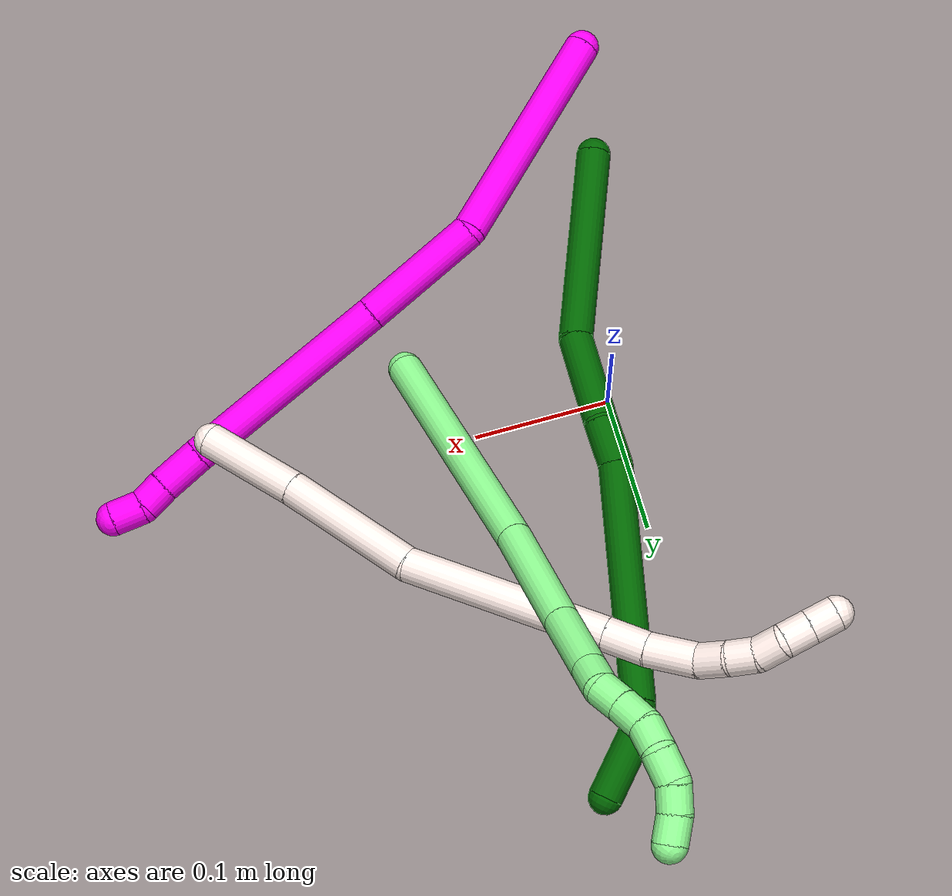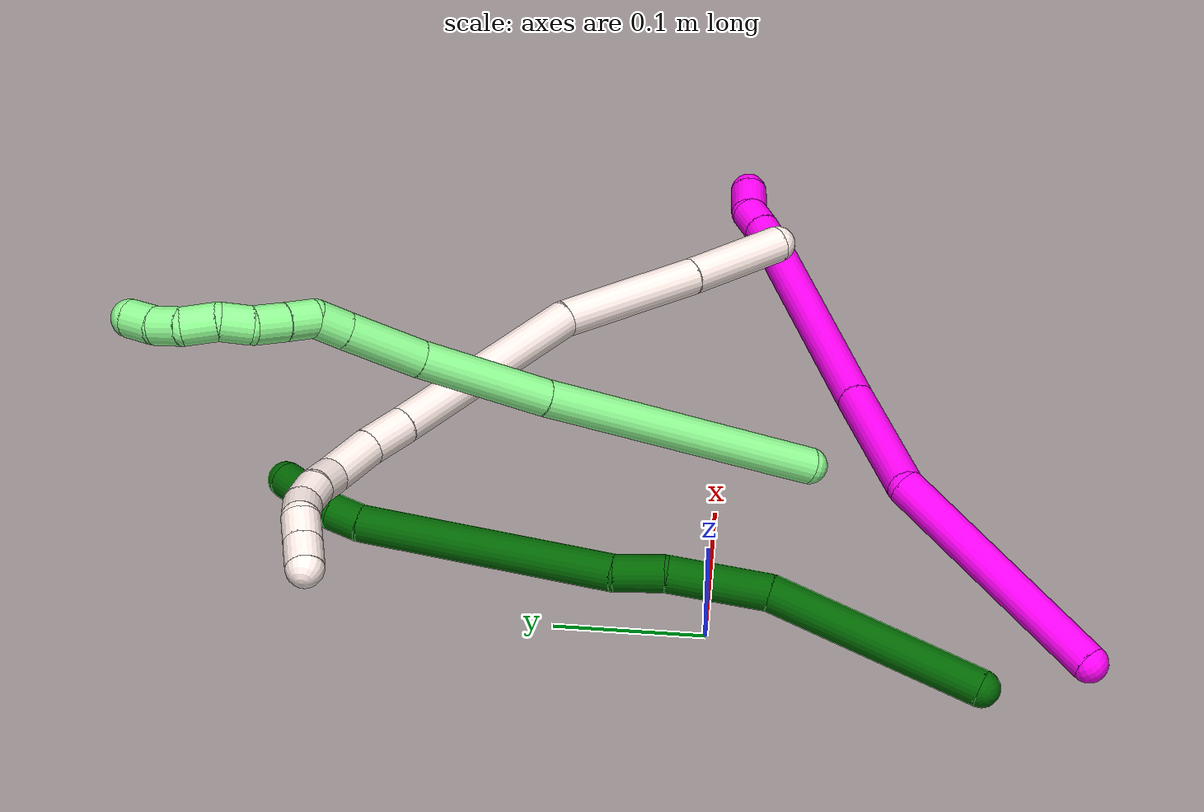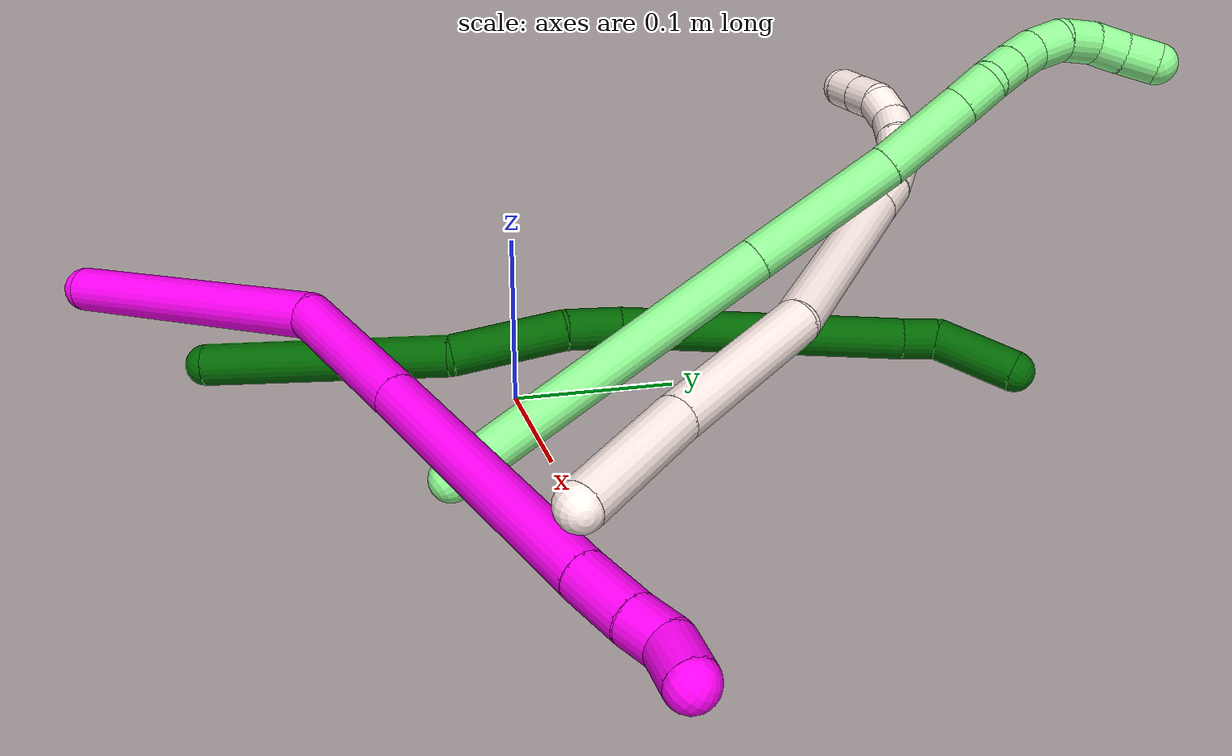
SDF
<sdf version="1.7">
 <world name="default">
  <model name="6">
   <static>0</static>
   <link name="6">
    <collision name="collision-cylinder-e_1_1_4">
     <pose>0.000671 0.045891 0.059735 -0.655079 0.008907 -0.003026</pose>
     <geometry><cylinder><radius>0.0125</radius><length>0.150661</length></cylinder></geometry>
     <surface>
      <friction><ode><mu>1.16</mu><mu2>1.16</mu2><slip1>0</slip1><slip2>0</slip2></ode></friction>
      <contact><ode><kp>1e+06</kp><kd>1</kd><max_vel>0</max_vel><min_depth>0.001</min_depth></ode></contact>
     </surface>
    </collision>
    <visual name="visual-cylinder-e_1_1_4">
     <pose>0.000671 0.045891 0.059735 -0.655079 0.008907 -0.003026</pose>
     <geometry><cylinder><radius>0.0125</radius><length>0.150661</length></cylinder></geometry>
     <material><ambient>0 0.392157 0.003922 1</ambient></material>
    </visual>
    <collision name="collision-cylinder-e_2_4_5">
     <pose>0.009682 0.118679 0.139851 -0.922335 0.242283 -0.120836</pose>
     <geometry><cylinder><radius>0.0125</radius><length>0.069526</length></cylinder></geometry>
     <surface>
      <friction><ode><mu>1.16</mu><mu2>1.16</mu2><slip1>0</slip1><slip2>0</slip2></ode></friction>
      <contact><ode><kp>1e+06</kp><kd>1</kd><max_vel>0</max_vel><min_depth>0.001</min_depth></ode></contact>
     </surface>
    </collision>
    <visual name="visual-cylinder-e_2_4_5">
     <pose>0.009682 0.118679 0.139851 -0.922335 0.242283 -0.120836</pose>
     <geometry><cylinder><radius>0.0125</radius><length>0.069526</length></cylinder></geometry>
     <material><ambient>0 0.392157 0.003922 1</ambient></material>
    </visual>
    <collision name="collision-cylinder-e_3_5_6">
     <pose>0.024904 0.156657 0.17122 -0.789671 0.415365 -0.175173</pose>
     <geometry><cylinder><radius>0.0125</radius><length>0.034107</length></cylinder></geometry>
     <surface>
      <friction><ode><mu>1.16</mu><mu2>1.16</mu2><slip1>0</slip1><slip2>0</slip2></ode></friction>
      <contact><ode><kp>1e+06</kp><kd>1</kd><max_vel>0</max_vel><min_depth>0.001</min_depth></ode></contact>
     </surface>
    </collision>
    <visual name="visual-cylinder-e_3_5_6">
     <pose>0.024904 0.156657 0.17122 -0.789671 0.415365 -0.175173</pose>
     <geometry><cylinder><radius>0.0125</radius><length>0.034107</length></cylinder></geometry>
     <material><ambient>0 0.392157 0.003922 1</ambient></material>
    </visual>
    <collision name="collision-cylinder-e_4_6_7">
     <pose>0.052333 0.218274 0.250101 -0.639869 0.238157 -0.079239</pose>
     <geometry><cylinder><radius>0.0125</radius><length>0.174194</length></cylinder></geometry>
     <surface>
      <friction><ode><mu>1.16</mu><mu2>1.16</mu2><slip1>0</slip1><slip2>0</slip2></ode></friction>
      <contact><ode><kp>1e+06</kp><kd>1</kd><max_vel>0</max_vel><min_depth>0.001</min_depth></ode></contact>
     </surface>
    </collision>
    <visual name="visual-cylinder-e_4_6_7">
     <pose>0.052333 0.218274 0.250101 -0.639869 0.238157 -0.079239</pose>
     <geometry><cylinder><radius>0.0125</radius><length>0.174194</length></cylinder></geometry>
     <material><ambient>0 0.392157 0.003922 1</ambient></material>
    </visual>
    <collision name="collision-cylinder-e_5_7_8">
     <pose>0.073377 0.275118 0.326747 -0.624431 0.046038 -0.014862</pose>
     <geometry><cylinder><radius>0.0125</radius><length>0.021597</length></cylinder></geometry>
     <surface>
      <friction><ode><mu>1.16</mu><mu2>1.16</mu2><slip1>0</slip1><slip2>0</slip2></ode></friction>
      <contact><ode><kp>1e+06</kp><kd>1</kd><max_vel>0</max_vel><min_depth>0.001</min_depth></ode></contact>
     </surface>
    </collision>
    <visual name="visual-cylinder-e_5_7_8">
     <pose>0.073377 0.275118 0.326747 -0.624431 0.046038 -0.014862</pose>
     <geometry><cylinder><radius>0.0125</radius><length>0.021597</length></cylinder></geometry>
     <material><ambient>0 0.392157 0.003922 1</ambient></material>
    </visual>
    <collision name="collision-cylinder-e_6_8_2">
     <pose>0.071673 0.285547 0.360015 -0.166611 -0.088284 0.007376</pose>
     <geometry><cylinder><radius>0.0125</radius><length>0.049915</length></cylinder></geometry>
     <surface>
      <friction><ode><mu>1.16</mu><mu2>1.16</mu2><slip1>0</slip1><slip2>0</slip2></ode></friction>
      <contact><ode><kp>1e+06</kp><kd>1</kd><max_vel>0</max_vel><min_depth>0.001</min_depth></ode></contact>
     </surface>
    </collision>
    <visual name="visual-cylinder-e_6_8_2">
     <pose>0.071673 0.285547 0.360015 -0.166611 -0.088284 0.007376</pose>
     <geometry><cylinder><radius>0.0125</radius><length>0.049915</length></cylinder></geometry>
     <material><ambient>0 0.392157 0.003922 1</ambient></material>
    </visual>
    <collision name="collision-sphere-2">
     <pose>0.069473 0.28967 0.384531 0 -0 0</pose>
     <geometry><sphere><radius>0.0125</radius></sphere></geometry>
     <surface>
      <friction><ode><mu>1.16</mu><mu2>1.16</mu2><slip1>0</slip1><slip2>0</slip2></ode></friction>
      <contact><ode><kp>1e+06</kp><kd>1</kd><max_vel>0</max_vel><min_depth>0.001</min_depth></ode></contact>
     </surface>
    </collision>
    <visual name="visual-sphere-2">
     <pose>0.069473 0.28967 0.384531 0 -0 0</pose>
     <geometry><sphere><radius>0.0125</radius></sphere></geometry>
     <material><ambient>0 0.392157 0.003922 1</ambient></material>
    </visual>
    <collision name="collision-sphere-4">
     <pose>0.001342 0.091782 0.119469 0 -0 0</pose>
     <geometry><sphere><radius>0.0125</radius></sphere></geometry>
     <surface>
      <friction><ode><mu>1.16</mu><mu2>1.16</mu2><slip1>0</slip1><slip2>0</slip2></ode></friction>
      <contact><ode><kp>1e+06</kp><kd>1</kd><max_vel>0</max_vel><min_depth>0.001</min_depth></ode></contact>
     </surface>
    </collision>
    <visual name="visual-sphere-4">
     <pose>0.001342 0.091782 0.119469 0 -0 0</pose>
     <geometry><sphere><radius>0.0125</radius></sphere></geometry>
     <material><ambient>0 0.392157 0.003922 1</ambient></material>
    </visual>
    <collision name="collision-sphere-1">
     <geometry><sphere><radius>0.0125</radius></sphere></geometry>
     <surface>
      <friction><ode><mu>1.16</mu><mu2>1.16</mu2><slip1>0</slip1><slip2>0</slip2></ode></friction>
      <contact><ode><kp>1e+06</kp><kd>1</kd><max_vel>0</max_vel><min_depth>0.001</min_depth></ode></contact>
     </surface>
    </collision>
    <visual name="visual-sphere-1">
     <geometry><sphere><radius>0.0125</radius></sphere></geometry>
     <material><ambient>0 0.392157 0.003922 1</ambient></material>
    </visual>
    <collision name="collision-sphere-8">
     <pose>0.073874 0.281425 0.335499 0 -0 0</pose>
     <geometry><sphere><radius>0.0125</radius></sphere></geometry>
     <surface>
      <friction><ode><mu>1.16</mu><mu2>1.16</mu2><slip1>0</slip1><slip2>0</slip2></ode></friction>
      <contact><ode><kp>1e+06</kp><kd>1</kd><max_vel>0</max_vel><min_depth>0.001</min_depth></ode></contact>
     </surface>
    </collision>
    <visual name="visual-sphere-8">
     <pose>0.073874 0.281425 0.335499 0 -0 0</pose>
     <geometry><sphere><radius>0.0125</radius></sphere></geometry>
     <material><ambient>0 0.392157 0.003922 1</ambient></material>
    </visual>
    <collision name="collision-sphere-5">
     <pose>0.018022 0.145577 0.160234 0 -0 0</pose>
     <geometry><sphere><radius>0.0125</radius></sphere></geometry>
     <surface>
      <friction><ode><mu>1.16</mu><mu2>1.16</mu2><slip1>0</slip1><slip2>0</slip2></ode></friction>
      <contact><ode><kp>1e+06</kp><kd>1</kd><max_vel>0</max_vel><min_depth>0.001</min_depth></ode></contact>
     </surface>
    </collision>
    <visual name="visual-sphere-5">
     <pose>0.018022 0.145577 0.160234 0 -0 0</pose>
     <geometry><sphere><radius>0.0125</radius></sphere></geometry>
     <material><ambient>0 0.392157 0.003922 1</ambient></material>
    </visual>
    <collision name="collision-sphere-6">
     <pose>0.031785 0.167737 0.182206 0 -0 0</pose>
     <geometry><sphere><radius>0.0125</radius></sphere></geometry>
     <surface>
      <friction><ode><mu>1.16</mu><mu2>1.16</mu2><slip1>0</slip1><slip2>0</slip2></ode></friction>
      <contact><ode><kp>1e+06</kp><kd>1</kd><max_vel>0</max_vel><min_depth>0.001</min_depth></ode></contact>
     </surface>
    </collision>
    <visual name="visual-sphere-6">
     <pose>0.031785 0.167737 0.182206 0 -0 0</pose>
     <geometry><sphere><radius>0.0125</radius></sphere></geometry>
     <material><ambient>0 0.392157 0.003922 1</ambient></material>
    </visual>
    <collision name="collision-sphere-7">
     <pose>0.07288 0.268812 0.317996 0 -0 0</pose>
     <geometry><sphere><radius>0.0125</radius></sphere></geometry>
     <surface>
      <friction><ode><mu>1.16</mu><mu2>1.16</mu2><slip1>0</slip1><slip2>0</slip2></ode></friction>
      <contact><ode><kp>1e+06</kp><kd>1</kd><max_vel>0</max_vel><min_depth>0.001</min_depth></ode></contact>
     </surface>
    </collision>
    <visual name="visual-sphere-7">
     <pose>0.07288 0.268812 0.317996 0 -0 0</pose>
     <geometry><sphere><radius>0.0125</radius></sphere></geometry>
     <material><ambient>0 0.392157 0.003922 1</ambient></material>
    </visual>
    <inertial>
     <pose>0.031804 0.157451 0.186312 0 -0 0</pose>
     <mass>0.5</mass>
     <inertia>
      <ixx>0.000738</ixx>
      <ixy>0</ixy>
      <ixz>0</ixz>
      <iyy>0.000612</iyy>
      <iyz>0</iyz>
      <izz>-0.000553</izz>
     </inertia>
    </inertial>
   </link>
   <pose>-0.042493 -0.180269 0.024869 2.12671 0.596946 2.69921</pose>
  </model>
  <model name="10">
   <static>0</static>
   <link name="10">
    <collision name="collision-cylinder-e_1_1_4">
     <pose>0.05125 0.039714 0.055665 -0.619696 0.643176 -0.212521</pose>
     <geometry><cylinder><radius>0.0125</radius><length>0.170907</length></cylinder></geometry>
     <surface>
      <friction><ode><mu>1.16</mu><mu2>1.16</mu2><slip1>0</slip1><slip2>0</slip2></ode></friction>
      <contact><ode><kp>1e+06</kp><kd>1</kd><max_vel>0</max_vel><min_depth>0.001</min_depth></ode></contact>
     </surface>
    </collision>
    <visual name="visual-cylinder-e_1_1_4">
     <pose>0.05125 0.039714 0.055665 -0.619696 0.643176 -0.212521</pose>
     <geometry><cylinder><radius>0.0125</radius><length>0.170907</length></cylinder></geometry>
     <material><ambient>1 0 0.964706 1</ambient></material>
    </visual>
    <collision name="collision-cylinder-e_2_4_5">
     <pose>0.143506 0.093955 0.12586 -0.785274 1.10629 -0.500685</pose>
     <geometry><cylinder><radius>0.0125</radius><length>0.091732</length></cylinder></geometry>
     <surface>
      <friction><ode><mu>1.16</mu><mu2>1.16</mu2><slip1>0</slip1><slip2>0</slip2></ode></friction>
      <contact><ode><kp>1e+06</kp><kd>1</kd><max_vel>0</max_vel><min_depth>0.001</min_depth></ode></contact>
     </surface>
    </collision>
    <visual name="visual-cylinder-e_2_4_5">
     <pose>0.143506 0.093955 0.12586 -0.785274 1.10629 -0.500685</pose>
     <geometry><cylinder><radius>0.0125</radius><length>0.091732</length></cylinder></geometry>
     <material><ambient>1 0 0.964706 1</ambient></material>
    </visual>
    <collision name="collision-cylinder-e_3_5_6">
     <pose>0.256404 0.132536 0.165486 -0.764213 1.12041 -0.493834</pose>
     <geometry><cylinder><radius>0.0125</radius><length>0.159709</length></cylinder></geometry>
     <surface>
      <friction><ode><mu>1.16</mu><mu2>1.16</mu2><slip1>0</slip1><slip2>0</slip2></ode></friction>
      <contact><ode><kp>1e+06</kp><kd>1</kd><max_vel>0</max_vel><min_depth>0.001</min_depth></ode></contact>
     </surface>
    </collision>
    <visual name="visual-cylinder-e_3_5_6">
     <pose>0.256404 0.132536 0.165486 -0.764213 1.12041 -0.493834</pose>
     <geometry><cylinder><radius>0.0125</radius><length>0.159709</length></cylinder></geometry>
     <material><ambient>1 0 0.964706 1</ambient></material>
    </visual>
    <collision name="collision-cylinder-e_4_6_7">
     <pose>0.343133 0.162097 0.196377 -0.759886 1.07662 -0.468183</pose>
     <geometry><cylinder><radius>0.0125</radius><length>0.033709</length></cylinder></geometry>
     <surface>
      <friction><ode><mu>1.16</mu><mu2>1.16</mu2><slip1>0</slip1><slip2>0</slip2></ode></friction>
      <contact><ode><kp>1e+06</kp><kd>1</kd><max_vel>0</max_vel><min_depth>0.001</min_depth></ode></contact>
     </surface>
    </collision>
    <visual name="visual-cylinder-e_4_6_7">
     <pose>0.343133 0.162097 0.196377 -0.759886 1.07662 -0.468183</pose>
     <geometry><cylinder><radius>0.0125</radius><length>0.033709</length></cylinder></geometry>
     <material><ambient>1 0 0.964706 1</ambient></material>
    </visual>
    <collision name="collision-cylinder-e_5_7_8">
     <pose>0.366459 0.17157 0.206216 -0.775692 0.982299 -0.430264</pose>
     <geometry><cylinder><radius>0.0125</radius><length>0.020408</length></cylinder></geometry>
     <surface>
      <friction><ode><mu>1.16</mu><mu2>1.16</mu2><slip1>0</slip1><slip2>0</slip2></ode></friction>
      <contact><ode><kp>1e+06</kp><kd>1</kd><max_vel>0</max_vel><min_depth>0.001</min_depth></ode></contact>
     </surface>
    </collision>
    <visual name="visual-cylinder-e_5_7_8">
     <pose>0.366459 0.17157 0.206216 -0.775692 0.982299 -0.430264</pose>
     <geometry><cylinder><radius>0.0125</radius><length>0.020408</length></cylinder></geometry>
     <material><ambient>1 0 0.964706 1</ambient></material>
    </visual>
    <collision name="collision-cylinder-e_6_8_2">
     <pose>0.38646 0.175899 0.212663 -0.149773 1.36276 -0.121535</pose>
     <geometry><cylinder><radius>0.0125</radius><length>0.023534</length></cylinder></geometry>
     <surface>
      <friction><ode><mu>1.16</mu><mu2>1.16</mu2><slip1>0</slip1><slip2>0</slip2></ode></friction>
      <contact><ode><kp>1e+06</kp><kd>1</kd><max_vel>0</max_vel><min_depth>0.001</min_depth></ode></contact>
     </surface>
    </collision>
    <visual name="visual-cylinder-e_6_8_2">
     <pose>0.38646 0.175899 0.212663 -0.149773 1.36276 -0.121535</pose>
     <geometry><cylinder><radius>0.0125</radius><length>0.023534</length></cylinder></geometry>
     <material><ambient>1 0 0.964706 1</ambient></material>
    </visual>
    <collision name="collision-sphere-2">
     <pose>0.397973 0.176262 0.215066 0 -0 0</pose>
     <geometry><sphere><radius>0.0125</radius></sphere></geometry>
     <surface>
      <friction><ode><mu>1.16</mu><mu2>1.16</mu2><slip1>0</slip1><slip2>0</slip2></ode></friction>
      <contact><ode><kp>1e+06</kp><kd>1</kd><max_vel>0</max_vel><min_depth>0.001</min_depth></ode></contact>
     </surface>
    </collision>
    <visual name="visual-sphere-2">
     <pose>0.397973 0.176262 0.215066 0 -0 0</pose>
     <geometry><sphere><radius>0.0125</radius></sphere></geometry>
     <material><ambient>1 0 0.964706 1</ambient></material>
    </visual>
    <collision name="collision-sphere-4">
     <pose>0.1025 0.079428 0.111329 0 -0 0</pose>
     <geometry><sphere><radius>0.0125</radius></sphere></geometry>
     <surface>
      <friction><ode><mu>1.16</mu><mu2>1.16</mu2><slip1>0</slip1><slip2>0</slip2></ode></friction>
      <contact><ode><kp>1e+06</kp><kd>1</kd><max_vel>0</max_vel><min_depth>0.001</min_depth></ode></contact>
     </surface>
    </collision>
    <visual name="visual-sphere-4">
     <pose>0.1025 0.079428 0.111329 0 -0 0</pose>
     <geometry><sphere><radius>0.0125</radius></sphere></geometry>
     <material><ambient>1 0 0.964706 1</ambient></material>
    </visual>
    <collision name="collision-sphere-1">
     <geometry><sphere><radius>0.0125</radius></sphere></geometry>
     <surface>
      <friction><ode><mu>1.16</mu><mu2>1.16</mu2><slip1>0</slip1><slip2>0</slip2></ode></friction>
      <contact><ode><kp>1e+06</kp><kd>1</kd><max_vel>0</max_vel><min_depth>0.001</min_depth></ode></contact>
     </surface>
    </collision>
    <visual name="visual-sphere-1">
     <geometry><sphere><radius>0.0125</radius></sphere></geometry>
     <material><ambient>1 0 0.964706 1</ambient></material>
    </visual>
    <collision name="collision-sphere-8">
     <pose>0.374947 0.175536 0.21026 0 -0 0</pose>
     <geometry><sphere><radius>0.0125</radius></sphere></geometry>
     <surface>
      <friction><ode><mu>1.16</mu><mu2>1.16</mu2><slip1>0</slip1><slip2>0</slip2></ode></friction>
      <contact><ode><kp>1e+06</kp><kd>1</kd><max_vel>0</max_vel><min_depth>0.001</min_depth></ode></contact>
     </surface>
    </collision>
    <visual name="visual-sphere-8">
     <pose>0.374947 0.175536 0.21026 0 -0 0</pose>
     <geometry><sphere><radius>0.0125</radius></sphere></geometry>
     <material><ambient>1 0 0.964706 1</ambient></material>
    </visual>
    <collision name="collision-sphere-5">
     <pose>0.184512 0.108483 0.140391 0 -0 0</pose>
     <geometry><sphere><radius>0.0125</radius></sphere></geometry>
     <surface>
      <friction><ode><mu>1.16</mu><mu2>1.16</mu2><slip1>0</slip1><slip2>0</slip2></ode></friction>
      <contact><ode><kp>1e+06</kp><kd>1</kd><max_vel>0</max_vel><min_depth>0.001</min_depth></ode></contact>
     </surface>
    </collision>
    <visual name="visual-sphere-5">
     <pose>0.184512 0.108483 0.140391 0 -0 0</pose>
     <geometry><sphere><radius>0.0125</radius></sphere></geometry>
     <material><ambient>1 0 0.964706 1</ambient></material>
    </visual>
    <collision name="collision-sphere-6">
     <pose>0.328295 0.15659 0.190582 0 -0 0</pose>
     <geometry><sphere><radius>0.0125</radius></sphere></geometry>
     <surface>
      <friction><ode><mu>1.16</mu><mu2>1.16</mu2><slip1>0</slip1><slip2>0</slip2></ode></friction>
      <contact><ode><kp>1e+06</kp><kd>1</kd><max_vel>0</max_vel><min_depth>0.001</min_depth></ode></contact>
     </surface>
    </collision>
    <visual name="visual-sphere-6">
     <pose>0.328295 0.15659 0.190582 0 -0 0</pose>
     <geometry><sphere><radius>0.0125</radius></sphere></geometry>
     <material><ambient>1 0 0.964706 1</ambient></material>
    </visual>
    <collision name="collision-sphere-7">
     <pose>0.357972 0.167604 0.202172 0 -0 0</pose>
     <geometry><sphere><radius>0.0125</radius></sphere></geometry>
     <surface>
      <friction><ode><mu>1.16</mu><mu2>1.16</mu2><slip1>0</slip1><slip2>0</slip2></ode></friction>
      <contact><ode><kp>1e+06</kp><kd>1</kd><max_vel>0</max_vel><min_depth>0.001</min_depth></ode></contact>
     </surface>
    </collision>
    <visual name="visual-sphere-7">
     <pose>0.357972 0.167604 0.202172 0 -0 0</pose>
     <geometry><sphere><radius>0.0125</radius></sphere></geometry>
     <material><ambient>1 0 0.964706 1</ambient></material>
    </visual>
    <inertial>
     <pose>0.182027 0.099357 0.126643 0 -0 0</pose>
     <mass>0.5</mass>
     <inertia>
      <ixx>0.000365</ixx>
      <ixy>0</ixy>
      <ixz>0</ixz>
      <iyy>0.000615</iyy>
      <iyz>0</iyz>
      <izz>-0.00094</izz>
     </inertia>
    </inertial>
   </link>
   <pose>-0.051219 -0.24427 0.07525 -0.612059 0.320611 -0.072679</pose>
  </model>
  <model name="11">
   <static>0</static>
   <link name="11">
    <collision name="collision-cylinder-e_1_1_4">
     <pose>-0.013217 0.024578 0.024512 -0.786737 -0.363827 0.15238</pose>
     <geometry><cylinder><radius>0.0125</radius><length>0.074286</length></cylinder></geometry>
     <surface>
      <friction><ode><mu>1.16</mu><mu2>1.16</mu2><slip1>0</slip1><slip2>0</slip2></ode></friction>
      <contact><ode><kp>1e+06</kp><kd>1</kd><max_vel>0</max_vel><min_depth>0.001</min_depth></ode></contact>
     </surface>
    </collision>
    <visual name="visual-cylinder-e_1_1_4">
     <pose>-0.013217 0.024578 0.024512 -0.786737 -0.363827 0.15238</pose>
     <geometry><cylinder><radius>0.0125</radius><length>0.074286</length></cylinder></geometry>
     <material><ambient>1 0.933333 0.909804 1</ambient></material>
    </visual>
    <collision name="collision-cylinder-e_2_4_5">
     <pose>-0.046284 0.084508 0.081369 -0.829807 -0.392729 0.174799</pose>
     <geometry><cylinder><radius>0.0125</radius><length>0.103732</length></cylinder></geometry>
     <surface>
      <friction><ode><mu>1.16</mu><mu2>1.16</mu2><slip1>0</slip1><slip2>0</slip2></ode></friction>
      <contact><ode><kp>1e+06</kp><kd>1</kd><max_vel>0</max_vel><min_depth>0.001</min_depth></ode></contact>
     </surface>
    </collision>
    <visual name="visual-cylinder-e_2_4_5">
     <pose>-0.046284 0.084508 0.081369 -0.829807 -0.392729 0.174799</pose>
     <geometry><cylinder><radius>0.0125</radius><length>0.103732</length></cylinder></geometry>
     <material><ambient>1 0.933333 0.909804 1</ambient></material>
    </visual>
    <collision name="collision-cylinder-e_3_5_6">
     <pose>-0.088541 0.159072 0.173883 -0.577548 -0.302431 0.090475</pose>
     <geometry><cylinder><radius>0.0125</radius><length>0.150464</length></cylinder></geometry>
     <surface>
      <friction><ode><mu>1.16</mu><mu2>1.16</mu2><slip1>0</slip1><slip2>0</slip2></ode></friction>
      <contact><ode><kp>1e+06</kp><kd>1</kd><max_vel>0</max_vel><min_depth>0.001</min_depth></ode></contact>
     </surface>
    </collision>
    <visual name="visual-cylinder-e_3_5_6">
     <pose>-0.088541 0.159072 0.173883 -0.577548 -0.302431 0.090475</pose>
     <geometry><cylinder><radius>0.0125</radius><length>0.150464</length></cylinder></geometry>
     <material><ambient>1 0.933333 0.909804 1</ambient></material>
    </visual>
    <collision name="collision-cylinder-e_4_6_7">
     <pose>-0.115632 0.206579 0.246125 -0.602021 -0.309456 0.096767</pose>
     <geometry><cylinder><radius>0.0125</radius><length>0.030758</length></cylinder></geometry>
     <surface>
      <friction><ode><mu>1.16</mu><mu2>1.16</mu2><slip1>0</slip1><slip2>0</slip2></ode></friction>
      <contact><ode><kp>1e+06</kp><kd>1</kd><max_vel>0</max_vel><min_depth>0.001</min_depth></ode></contact>
     </surface>
    </collision>
    <visual name="visual-cylinder-e_4_6_7">
     <pose>-0.115632 0.206579 0.246125 -0.602021 -0.309456 0.096767</pose>
     <geometry><cylinder><radius>0.0125</radius><length>0.030758</length></cylinder></geometry>
     <material><ambient>1 0.933333 0.909804 1</ambient></material>
    </visual>
    <collision name="collision-cylinder-e_5_7_8">
     <pose>-0.123989 0.223732 0.273969 -0.511758 -0.20035 0.052578</pose>
     <geometry><cylinder><radius>0.0125</radius><length>0.036913</length></cylinder></geometry>
     <surface>
      <friction><ode><mu>1.16</mu><mu2>1.16</mu2><slip1>0</slip1><slip2>0</slip2></ode></friction>
      <contact><ode><kp>1e+06</kp><kd>1</kd><max_vel>0</max_vel><min_depth>0.001</min_depth></ode></contact>
     </surface>
    </collision>
    <visual name="visual-cylinder-e_5_7_8">
     <pose>-0.123989 0.223732 0.273969 -0.511758 -0.20035 0.052578</pose>
     <geometry><cylinder><radius>0.0125</radius><length>0.036913</length></cylinder></geometry>
     <material><ambient>1 0.933333 0.909804 1</ambient></material>
    </visual>
    <collision name="collision-cylinder-e_6_8_9">
     <pose>-0.125649 0.238605 0.299367 -0.558476 0.175503 -0.050441</pose>
     <geometry><cylinder><radius>0.0125</radius><length>0.023062</length></cylinder></geometry>
     <surface>
      <friction><ode><mu>1.16</mu><mu2>1.16</mu2><slip1>0</slip1><slip2>0</slip2></ode></friction>
      <contact><ode><kp>1e+06</kp><kd>1</kd><max_vel>0</max_vel><min_depth>0.001</min_depth></ode></contact>
     </surface>
    </collision>
    <visual name="visual-cylinder-e_6_8_9">
     <pose>-0.125649 0.238605 0.299367 -0.558476 0.175503 -0.050441</pose>
     <geometry><cylinder><radius>0.0125</radius><length>0.023062</length></cylinder></geometry>
     <material><ambient>1 0.933333 0.909804 1</ambient></material>
    </visual>
    <collision name="collision-cylinder-e_7_9_10">
     <pose>-0.122468 0.248321 0.318607 -0.367445 0.112851 -0.020991</pose>
     <geometry><cylinder><radius>0.0125</radius><length>0.020729</length></cylinder></geometry>
     <surface>
      <friction><ode><mu>1.16</mu><mu2>1.16</mu2><slip1>0</slip1><slip2>0</slip2></ode></friction>
      <contact><ode><kp>1e+06</kp><kd>1</kd><max_vel>0</max_vel><min_depth>0.001</min_depth></ode></contact>
     </surface>
    </collision>
    <visual name="visual-cylinder-e_7_9_10">
     <pose>-0.122468 0.248321 0.318607 -0.367445 0.112851 -0.020991</pose>
     <geometry><cylinder><radius>0.0125</radius><length>0.020729</length></cylinder></geometry>
     <material><ambient>1 0.933333 0.909804 1</ambient></material>
    </visual>
    <collision name="collision-cylinder-e_8_10_11">
     <pose>-0.117297 0.253838 0.337224 -0.199116 0.410987 -0.041635</pose>
     <geometry><cylinder><radius>0.0125</radius><length>0.020043</length></cylinder></geometry>
     <surface>
      <friction><ode><mu>1.16</mu><mu2>1.16</mu2><slip1>0</slip1><slip2>0</slip2></ode></friction>
      <contact><ode><kp>1e+06</kp><kd>1</kd><max_vel>0</max_vel><min_depth>0.001</min_depth></ode></contact>
     </surface>
    </collision>
    <visual name="visual-cylinder-e_8_10_11">
     <pose>-0.117297 0.253838 0.337224 -0.199116 0.410987 -0.041635</pose>
     <geometry><cylinder><radius>0.0125</radius><length>0.020043</length></cylinder></geometry>
     <material><ambient>1 0.933333 0.909804 1</ambient></material>
    </visual>
    <collision name="collision-cylinder-e_9_11_12">
     <pose>-0.111493 0.254071 0.355943 0.161662 0.180888 0.014693</pose>
     <geometry><cylinder><radius>0.0125</radius><length>0.020011</length></cylinder></geometry>
     <surface>
      <friction><ode><mu>1.16</mu><mu2>1.16</mu2><slip1>0</slip1><slip2>0</slip2></ode></friction>
      <contact><ode><kp>1e+06</kp><kd>1</kd><max_vel>0</max_vel><min_depth>0.001</min_depth></ode></contact>
     </surface>
    </collision>
    <visual name="visual-cylinder-e_9_11_12">
     <pose>-0.111493 0.254071 0.355943 0.161662 0.180888 0.014693</pose>
     <geometry><cylinder><radius>0.0125</radius><length>0.020011</length></cylinder></geometry>
     <material><ambient>1 0.933333 0.909804 1</ambient></material>
    </visual>
    <collision name="collision-cylinder-e_10_12_2">
     <pose>-0.107891 0.250904 0.375366 0.161649 0.181196 0.014717</pose>
     <geometry><cylinder><radius>0.0125</radius><length>0.020002</length></cylinder></geometry>
     <surface>
      <friction><ode><mu>1.16</mu><mu2>1.16</mu2><slip1>0</slip1><slip2>0</slip2></ode></friction>
      <contact><ode><kp>1e+06</kp><kd>1</kd><max_vel>0</max_vel><min_depth>0.001</min_depth></ode></contact>
     </surface>
    </collision>
    <visual name="visual-cylinder-e_10_12_2">
     <pose>-0.107891 0.250904 0.375366 0.161649 0.181196 0.014717</pose>
     <geometry><cylinder><radius>0.0125</radius><length>0.020002</length></cylinder></geometry>
     <material><ambient>1 0.933333 0.909804 1</ambient></material>
    </visual>
    <collision name="collision-sphere-2">
     <pose>-0.106089 0.24932 0.385076 0 -0 0</pose>
     <geometry><sphere><radius>0.0125</radius></sphere></geometry>
     <surface>
      <friction><ode><mu>1.16</mu><mu2>1.16</mu2><slip1>0</slip1><slip2>0</slip2></ode></friction>
      <contact><ode><kp>1e+06</kp><kd>1</kd><max_vel>0</max_vel><min_depth>0.001</min_depth></ode></contact>
     </surface>
    </collision>
    <visual name="visual-sphere-2">
     <pose>-0.106089 0.24932 0.385076 0 -0 0</pose>
     <geometry><sphere><radius>0.0125</radius></sphere></geometry>
     <material><ambient>1 0.933333 0.909804 1</ambient></material>
    </visual>
    <collision name="collision-sphere-12">
     <pose>-0.109693 0.252487 0.365657 0 -0 0</pose>
     <geometry><sphere><radius>0.0125</radius></sphere></geometry>
     <surface>
      <friction><ode><mu>1.16</mu><mu2>1.16</mu2><slip1>0</slip1><slip2>0</slip2></ode></friction>
      <contact><ode><kp>1e+06</kp><kd>1</kd><max_vel>0</max_vel><min_depth>0.001</min_depth></ode></contact>
     </surface>
    </collision>
    <visual name="visual-sphere-12">
     <pose>-0.109693 0.252487 0.365657 0 -0 0</pose>
     <geometry><sphere><radius>0.0125</radius></sphere></geometry>
     <material><ambient>1 0.933333 0.909804 1</ambient></material>
    </visual>
    <collision name="collision-sphere-11">
     <pose>-0.113293 0.255655 0.346229 0 -0 0</pose>
     <geometry><sphere><radius>0.0125</radius></sphere></geometry>
     <surface>
      <friction><ode><mu>1.16</mu><mu2>1.16</mu2><slip1>0</slip1><slip2>0</slip2></ode></friction>
      <contact><ode><kp>1e+06</kp><kd>1</kd><max_vel>0</max_vel><min_depth>0.001</min_depth></ode></contact>
     </surface>
    </collision>
    <visual name="visual-sphere-11">
     <pose>-0.113293 0.255655 0.346229 0 -0 0</pose>
     <geometry><sphere><radius>0.0125</radius></sphere></geometry>
     <material><ambient>1 0.933333 0.909804 1</ambient></material>
    </visual>
    <collision name="collision-sphere-10">
     <pose>-0.121301 0.252021 0.328219 0 -0 0</pose>
     <geometry><sphere><radius>0.0125</radius></sphere></geometry>
     <surface>
      <friction><ode><mu>1.16</mu><mu2>1.16</mu2><slip1>0</slip1><slip2>0</slip2></ode></friction>
      <contact><ode><kp>1e+06</kp><kd>1</kd><max_vel>0</max_vel><min_depth>0.001</min_depth></ode></contact>
     </surface>
    </collision>
    <visual name="visual-sphere-10">
     <pose>-0.121301 0.252021 0.328219 0 -0 0</pose>
     <geometry><sphere><radius>0.0125</radius></sphere></geometry>
     <material><ambient>1 0.933333 0.909804 1</ambient></material>
    </visual>
    <collision name="collision-sphere-9">
     <pose>-0.123635 0.244622 0.308996 0 -0 0</pose>
     <geometry><sphere><radius>0.0125</radius></sphere></geometry>
     <surface>
      <friction><ode><mu>1.16</mu><mu2>1.16</mu2><slip1>0</slip1><slip2>0</slip2></ode></friction>
      <contact><ode><kp>1e+06</kp><kd>1</kd><max_vel>0</max_vel><min_depth>0.001</min_depth></ode></contact>
     </surface>
    </collision>
    <visual name="visual-sphere-9">
     <pose>-0.123635 0.244622 0.308996 0 -0 0</pose>
     <geometry><sphere><radius>0.0125</radius></sphere></geometry>
     <material><ambient>1 0.933333 0.909804 1</ambient></material>
    </visual>
    <collision name="collision-sphere-4">
     <pose>-0.026435 0.049155 0.049024 0 -0 0</pose>
     <geometry><sphere><radius>0.0125</radius></sphere></geometry>
     <surface>
      <friction><ode><mu>1.16</mu><mu2>1.16</mu2><slip1>0</slip1><slip2>0</slip2></ode></friction>
      <contact><ode><kp>1e+06</kp><kd>1</kd><max_vel>0</max_vel><min_depth>0.001</min_depth></ode></contact>
     </surface>
    </collision>
    <visual name="visual-sphere-4">
     <pose>-0.026435 0.049155 0.049024 0 -0 0</pose>
     <geometry><sphere><radius>0.0125</radius></sphere></geometry>
     <material><ambient>1 0.933333 0.909804 1</ambient></material>
    </visual>
    <collision name="collision-sphere-1">
     <geometry><sphere><radius>0.0125</radius></sphere></geometry>
     <surface>
      <friction><ode><mu>1.16</mu><mu2>1.16</mu2><slip1>0</slip1><slip2>0</slip2></ode></friction>
      <contact><ode><kp>1e+06</kp><kd>1</kd><max_vel>0</max_vel><min_depth>0.001</min_depth></ode></contact>
     </surface>
    </collision>
    <visual name="visual-sphere-1">
     <geometry><sphere><radius>0.0125</radius></sphere></geometry>
     <material><ambient>1 0.933333 0.909804 1</ambient></material>
    </visual>
    <collision name="collision-sphere-8">
     <pose>-0.127662 0.232589 0.289739 0 -0 0</pose>
     <geometry><sphere><radius>0.0125</radius></sphere></geometry>
     <surface>
      <friction><ode><mu>1.16</mu><mu2>1.16</mu2><slip1>0</slip1><slip2>0</slip2></ode></friction>
      <contact><ode><kp>1e+06</kp><kd>1</kd><max_vel>0</max_vel><min_depth>0.001</min_depth></ode></contact>
     </surface>
    </collision>
    <visual name="visual-sphere-8">
     <pose>-0.127662 0.232589 0.289739 0 -0 0</pose>
     <geometry><sphere><radius>0.0125</radius></sphere></geometry>
     <material><ambient>1 0.933333 0.909804 1</ambient></material>
    </visual>
    <collision name="collision-sphere-5">
     <pose>-0.066134 0.119862 0.113714 0 -0 0</pose>
     <geometry><sphere><radius>0.0125</radius></sphere></geometry>
     <surface>
      <friction><ode><mu>1.16</mu><mu2>1.16</mu2><slip1>0</slip1><slip2>0</slip2></ode></friction>
      <contact><ode><kp>1e+06</kp><kd>1</kd><max_vel>0</max_vel><min_depth>0.001</min_depth></ode></contact>
     </surface>
    </collision>
    <visual name="visual-sphere-5">
     <pose>-0.066134 0.119862 0.113714 0 -0 0</pose>
     <geometry><sphere><radius>0.0125</radius></sphere></geometry>
     <material><ambient>1 0.933333 0.909804 1</ambient></material>
    </visual>
    <collision name="collision-sphere-6">
     <pose>-0.110949 0.198283 0.234052 0 -0 0</pose>
     <geometry><sphere><radius>0.0125</radius></sphere></geometry>
     <surface>
      <friction><ode><mu>1.16</mu><mu2>1.16</mu2><slip1>0</slip1><slip2>0</slip2></ode></friction>
      <contact><ode><kp>1e+06</kp><kd>1</kd><max_vel>0</max_vel><min_depth>0.001</min_depth></ode></contact>
     </surface>
    </collision>
    <visual name="visual-sphere-6">
     <pose>-0.110949 0.198283 0.234052 0 -0 0</pose>
     <geometry><sphere><radius>0.0125</radius></sphere></geometry>
     <material><ambient>1 0.933333 0.909804 1</ambient></material>
    </visual>
    <collision name="collision-sphere-7">
     <pose>-0.120316 0.214874 0.258199 0 -0 0</pose>
     <geometry><sphere><radius>0.0125</radius></sphere></geometry>
     <surface>
      <friction><ode><mu>1.16</mu><mu2>1.16</mu2><slip1>0</slip1><slip2>0</slip2></ode></friction>
      <contact><ode><kp>1e+06</kp><kd>1</kd><max_vel>0</max_vel><min_depth>0.001</min_depth></ode></contact>
     </surface>
    </collision>
    <visual name="visual-sphere-7">
     <pose>-0.120316 0.214874 0.258199 0 -0 0</pose>
     <geometry><sphere><radius>0.0125</radius></sphere></geometry>
     <material><ambient>1 0.933333 0.909804 1</ambient></material>
    </visual>
    <inertial>
     <pose>-0.078831 0.14996 0.178013 0 -0 0</pose>
     <mass>0.5</mass>
     <inertia><ixx>0.000453</ixx><ixy>0</ixy><ixz>0</ixz><iyy>0.000424</iyy><iyz>0</iyz><izz>-8e-05</izz></inertia>
    </inertial>
   </link>
   <pose>0.287096 -0.029661 0.061713 1.48914 -0.84632 -1.55231</pose>
  </model>
  <model name="13">
   <static>0</static>
   <link name="13">
    <collision name="collision-cylinder-e_1_1_4">
     <pose>5.5e-05 0.001503 0.101211 -0.014852 0.000548 -4e-06</pose>
     <geometry><cylinder><radius>0.0125</radius><length>0.202443</length></cylinder></geometry>
     <surface>
      <friction><ode><mu>1.16</mu><mu2>1.16</mu2><slip1>0</slip1><slip2>0</slip2></ode></friction>
      <contact><ode><kp>1e+06</kp><kd>1</kd><max_vel>0</max_vel><min_depth>0.001</min_depth></ode></contact>
     </surface>
    </collision>
    <visual name="visual-cylinder-e_1_1_4">
     <pose>5.5e-05 0.001503 0.101211 -0.014852 0.000548 -4e-06</pose>
     <geometry><cylinder><radius>0.0125</radius><length>0.202443</length></cylinder></geometry>
     <material><ambient>0.564706 0.984314 0.572549 1</ambient></material>
    </visual>
    <collision name="collision-cylinder-e_2_4_5">
     <pose>0.002235 0.004214 0.24834 -0.026278 0.046216 -0.000607</pose>
     <geometry><cylinder><radius>0.0125</radius><length>0.091968</length></cylinder></geometry>
     <surface>
      <friction><ode><mu>1.16</mu><mu2>1.16</mu2><slip1>0</slip1><slip2>0</slip2></ode></friction>
      <contact><ode><kp>1e+06</kp><kd>1</kd><max_vel>0</max_vel><min_depth>0.001</min_depth></ode></contact>
     </surface>
    </collision>
    <visual name="visual-cylinder-e_2_4_5">
     <pose>0.002235 0.004214 0.24834 -0.026278 0.046216 -0.000607</pose>
     <geometry><cylinder><radius>0.0125</radius><length>0.091968</length></cylinder></geometry>
     <material><ambient>0.564706 0.984314 0.572549 1</ambient></material>
    </visual>
    <collision name="collision-cylinder-e_3_5_6">
     <pose>0.007033 0.004456 0.32178 0.035043 0.096764 0.001697</pose>
     <geometry><cylinder><radius>0.0125</radius><length>0.055333</length></cylinder></geometry>
     <surface>
      <friction><ode><mu>1.16</mu><mu2>1.16</mu2><slip1>0</slip1><slip2>0</slip2></ode></friction>
      <contact><ode><kp>1e+06</kp><kd>1</kd><max_vel>0</max_vel><min_depth>0.001</min_depth></ode></contact>
     </surface>
    </collision>
    <visual name="visual-cylinder-e_3_5_6">
     <pose>0.007033 0.004456 0.32178 0.035043 0.096764 0.001697</pose>
     <geometry><cylinder><radius>0.0125</radius><length>0.055333</length></cylinder></geometry>
     <material><ambient>0.564706 0.984314 0.572549 1</ambient></material>
    </visual>
    <collision name="collision-cylinder-e_4_6_7">
     <pose>0.010957 0.002897 0.36044 0.053269 0.111668 0.002978</pose>
     <geometry><cylinder><radius>0.0125</radius><length>0.02245</length></cylinder></geometry>
     <surface>
      <friction><ode><mu>1.16</mu><mu2>1.16</mu2><slip1>0</slip1><slip2>0</slip2></ode></friction>
      <contact><ode><kp>1e+06</kp><kd>1</kd><max_vel>0</max_vel><min_depth>0.001</min_depth></ode></contact>
     </surface>
    </collision>
    <visual name="visual-cylinder-e_4_6_7">
     <pose>0.010957 0.002897 0.36044 0.053269 0.111668 0.002978</pose>
     <geometry><cylinder><radius>0.0125</radius><length>0.02245</length></cylinder></geometry>
     <material><ambient>0.564706 0.984314 0.572549 1</ambient></material>
    </visual>
    <collision name="collision-cylinder-e_5_7_8">
     <pose>0.008601 0.001835 0.381287 0.048221 -0.355281 -0.008659</pose>
     <geometry><cylinder><radius>0.0125</radius><length>0.020733</length></cylinder></geometry>
     <surface>
      <friction><ode><mu>1.16</mu><mu2>1.16</mu2><slip1>0</slip1><slip2>0</slip2></ode></friction>
      <contact><ode><kp>1e+06</kp><kd>1</kd><max_vel>0</max_vel><min_depth>0.001</min_depth></ode></contact>
     </surface>
    </collision>
    <visual name="visual-cylinder-e_5_7_8">
     <pose>0.008601 0.001835 0.381287 0.048221 -0.355281 -0.008659</pose>
     <geometry><cylinder><radius>0.0125</radius><length>0.020733</length></cylinder></geometry>
     <material><ambient>0.564706 0.984314 0.572549 1</ambient></material>
    </visual>
    <collision name="collision-cylinder-e_6_8_9">
     <pose>0.001356 0.001298 0.401442 0.00655 -0.33518 -0.001108</pose>
     <geometry><cylinder><radius>0.0125</radius><length>0.022127</length></cylinder></geometry>
     <surface>
      <friction><ode><mu>1.16</mu><mu2>1.16</mu2><slip1>0</slip1><slip2>0</slip2></ode></friction>
      <contact><ode><kp>1e+06</kp><kd>1</kd><max_vel>0</max_vel><min_depth>0.001</min_depth></ode></contact>
     </surface>
    </collision>
    <visual name="visual-cylinder-e_6_8_9">
     <pose>0.001356 0.001298 0.401442 0.00655 -0.33518 -0.001108</pose>
     <geometry><cylinder><radius>0.0125</radius><length>0.022127</length></cylinder></geometry>
     <material><ambient>0.564706 0.984314 0.572549 1</ambient></material>
    </visual>
    <collision name="collision-cylinder-e_7_9_10">
     <pose>-0.003435 0.00373 0.42215 -0.239044 -0.108693 0.013066</pose>
     <geometry><cylinder><radius>0.0125</radius><length>0.021247</length></cylinder></geometry>
     <surface>
      <friction><ode><mu>1.16</mu><mu2>1.16</mu2><slip1>0</slip1><slip2>0</slip2></ode></friction>
      <contact><ode><kp>1e+06</kp><kd>1</kd><max_vel>0</max_vel><min_depth>0.001</min_depth></ode></contact>
     </surface>
    </collision>
    <visual name="visual-cylinder-e_7_9_10">
     <pose>-0.003435 0.00373 0.42215 -0.239044 -0.108693 0.013066</pose>
     <geometry><cylinder><radius>0.0125</radius><length>0.021247</length></cylinder></geometry>
     <material><ambient>0.564706 0.984314 0.572549 1</ambient></material>
    </visual>
    <collision name="collision-cylinder-e_8_10_11">
     <pose>-0.008297 0.011983 0.441656 -0.556586 -0.328323 0.094585</pose>
     <geometry><cylinder><radius>0.0125</radius><length>0.023008</length></cylinder></geometry>
     <surface>
      <friction><ode><mu>1.16</mu><mu2>1.16</mu2><slip1>0</slip1><slip2>0</slip2></ode></friction>
      <contact><ode><kp>1e+06</kp><kd>1</kd><max_vel>0</max_vel><min_depth>0.001</min_depth></ode></contact>
     </surface>
    </collision>
    <visual name="visual-cylinder-e_8_10_11">
     <pose>-0.008297 0.011983 0.441656 -0.556586 -0.328323 0.094585</pose>
     <geometry><cylinder><radius>0.0125</radius><length>0.023008</length></cylinder></geometry>
     <material><ambient>0.564706 0.984314 0.572549 1</ambient></material>
    </visual>
    <collision name="collision-cylinder-e_9_11_12">
     <pose>-0.013018 0.025672 0.457021 -0.913953 -0.100557 0.049474</pose>
     <geometry><cylinder><radius>0.0125</radius><length>0.020146</length></cylinder></geometry>
     <surface>
      <friction><ode><mu>1.16</mu><mu2>1.16</mu2><slip1>0</slip1><slip2>0</slip2></ode></friction>
      <contact><ode><kp>1e+06</kp><kd>1</kd><max_vel>0</max_vel><min_depth>0.001</min_depth></ode></contact>
     </surface>
    </collision>
    <visual name="visual-cylinder-e_9_11_12">
     <pose>-0.013018 0.025672 0.457021 -0.913953 -0.100557 0.049474</pose>
     <geometry><cylinder><radius>0.0125</radius><length>0.020146</length></cylinder></geometry>
     <material><ambient>0.564706 0.984314 0.572549 1</ambient></material>
    </visual>
    <collision name="collision-cylinder-e_10_12_2">
     <pose>-0.012881 0.042144 0.468741 -0.990166 0.111977 -0.060505</pose>
     <geometry><cylinder><radius>0.0125</radius><length>0.020545</length></cylinder></geometry>
     <surface>
      <friction><ode><mu>1.16</mu><mu2>1.16</mu2><slip1>0</slip1><slip2>0</slip2></ode></friction>
      <contact><ode><kp>1e+06</kp><kd>1</kd><max_vel>0</max_vel><min_depth>0.001</min_depth></ode></contact>
     </surface>
    </collision>
    <visual name="visual-cylinder-e_10_12_2">
     <pose>-0.012881 0.042144 0.468741 -0.990166 0.111977 -0.060505</pose>
     <geometry><cylinder><radius>0.0125</radius><length>0.020545</length></cylinder></geometry>
     <material><ambient>0.564706 0.984314 0.572549 1</ambient></material>
    </visual>
    <collision name="collision-sphere-2">
     <pose>-0.011733 0.050679 0.47434 0 -0 0</pose>
     <geometry><sphere><radius>0.0125</radius></sphere></geometry>
     <surface>
      <friction><ode><mu>1.16</mu><mu2>1.16</mu2><slip1>0</slip1><slip2>0</slip2></ode></friction>
      <contact><ode><kp>1e+06</kp><kd>1</kd><max_vel>0</max_vel><min_depth>0.001</min_depth></ode></contact>
     </surface>
    </collision>
    <visual name="visual-sphere-2">
     <pose>-0.011733 0.050679 0.47434 0 -0 0</pose>
     <geometry><sphere><radius>0.0125</radius></sphere></geometry>
     <material><ambient>0.564706 0.984314 0.572549 1</ambient></material>
    </visual>
    <collision name="collision-sphere-12">
     <pose>-0.014029 0.033609 0.463141 0 -0 0</pose>
     <geometry><sphere><radius>0.0125</radius></sphere></geometry>
     <surface>
      <friction><ode><mu>1.16</mu><mu2>1.16</mu2><slip1>0</slip1><slip2>0</slip2></ode></friction>
      <contact><ode><kp>1e+06</kp><kd>1</kd><max_vel>0</max_vel><min_depth>0.001</min_depth></ode></contact>
     </surface>
    </collision>
    <visual name="visual-sphere-12">
     <pose>-0.014029 0.033609 0.463141 0 -0 0</pose>
     <geometry><sphere><radius>0.0125</radius></sphere></geometry>
     <material><ambient>0.564706 0.984314 0.572549 1</ambient></material>
    </visual>
    <collision name="collision-sphere-11">
     <pose>-0.012007 0.017736 0.450902 0 -0 0</pose>
     <geometry><sphere><radius>0.0125</radius></sphere></geometry>
     <surface>
      <friction><ode><mu>1.16</mu><mu2>1.16</mu2><slip1>0</slip1><slip2>0</slip2></ode></friction>
      <contact><ode><kp>1e+06</kp><kd>1</kd><max_vel>0</max_vel><min_depth>0.001</min_depth></ode></contact>
     </surface>
    </collision>
    <visual name="visual-sphere-11">
     <pose>-0.012007 0.017736 0.450902 0 -0 0</pose>
     <geometry><sphere><radius>0.0125</radius></sphere></geometry>
     <material><ambient>0.564706 0.984314 0.572549 1</ambient></material>
    </visual>
    <collision name="collision-sphere-10">
     <pose>-0.004588 0.00623 0.43241 0 -0 0</pose>
     <geometry><sphere><radius>0.0125</radius></sphere></geometry>
     <surface>
      <friction><ode><mu>1.16</mu><mu2>1.16</mu2><slip1>0</slip1><slip2>0</slip2></ode></friction>
      <contact><ode><kp>1e+06</kp><kd>1</kd><max_vel>0</max_vel><min_depth>0.001</min_depth></ode></contact>
     </surface>
    </collision>
    <visual name="visual-sphere-10">
     <pose>-0.004588 0.00623 0.43241 0 -0 0</pose>
     <geometry><sphere><radius>0.0125</radius></sphere></geometry>
     <material><ambient>0.564706 0.984314 0.572549 1</ambient></material>
    </visual>
    <collision name="collision-sphere-9">
     <pose>-0.002283 0.001229 0.41189 0 -0 0</pose>
     <geometry><sphere><radius>0.0125</radius></sphere></geometry>
     <surface>
      <friction><ode><mu>1.16</mu><mu2>1.16</mu2><slip1>0</slip1><slip2>0</slip2></ode></friction>
      <contact><ode><kp>1e+06</kp><kd>1</kd><max_vel>0</max_vel><min_depth>0.001</min_depth></ode></contact>
     </surface>
    </collision>
    <visual name="visual-sphere-9">
     <pose>-0.002283 0.001229 0.41189 0 -0 0</pose>
     <geometry><sphere><radius>0.0125</radius></sphere></geometry>
     <material><ambient>0.564706 0.984314 0.572549 1</ambient></material>
    </visual>
    <collision name="collision-sphere-4">
     <pose>0.000111 0.003007 0.202421 0 -0 0</pose>
     <geometry><sphere><radius>0.0125</radius></sphere></geometry>
     <surface>
      <friction><ode><mu>1.16</mu><mu2>1.16</mu2><slip1>0</slip1><slip2>0</slip2></ode></friction>
      <contact><ode><kp>1e+06</kp><kd>1</kd><max_vel>0</max_vel><min_depth>0.001</min_depth></ode></contact>
     </surface>
    </collision>
    <visual name="visual-sphere-4">
     <pose>0.000111 0.003007 0.202421 0 -0 0</pose>
     <geometry><sphere><radius>0.0125</radius></sphere></geometry>
     <material><ambient>0.564706 0.984314 0.572549 1</ambient></material>
    </visual>
    <collision name="collision-sphere-1">
     <geometry><sphere><radius>0.0125</radius></sphere></geometry>
     <surface>
      <friction><ode><mu>1.16</mu><mu2>1.16</mu2><slip1>0</slip1><slip2>0</slip2></ode></friction>
      <contact><ode><kp>1e+06</kp><kd>1</kd><max_vel>0</max_vel><min_depth>0.001</min_depth></ode></contact>
     </surface>
    </collision>
    <visual name="visual-sphere-1">
     <geometry><sphere><radius>0.0125</radius></sphere></geometry>
     <material><ambient>0.564706 0.984314 0.572549 1</ambient></material>
    </visual>
    <collision name="collision-sphere-8">
     <pose>0.004995 0.001366 0.390994 0 -0 0</pose>
     <geometry><sphere><radius>0.0125</radius></sphere></geometry>
     <surface>
      <friction><ode><mu>1.16</mu><mu2>1.16</mu2><slip1>0</slip1><slip2>0</slip2></ode></friction>
      <contact><ode><kp>1e+06</kp><kd>1</kd><max_vel>0</max_vel><min_depth>0.001</min_depth></ode></contact>
     </surface>
    </collision>
    <visual name="visual-sphere-8">
     <pose>0.004995 0.001366 0.390994 0 -0 0</pose>
     <geometry><sphere><radius>0.0125</radius></sphere></geometry>
     <material><ambient>0.564706 0.984314 0.572549 1</ambient></material>
    </visual>
    <collision name="collision-sphere-5">
     <pose>0.00436 0.00542 0.29426 0 -0 0</pose>
     <geometry><sphere><radius>0.0125</radius></sphere></geometry>
     <surface>
      <friction><ode><mu>1.16</mu><mu2>1.16</mu2><slip1>0</slip1><slip2>0</slip2></ode></friction>
      <contact><ode><kp>1e+06</kp><kd>1</kd><max_vel>0</max_vel><min_depth>0.001</min_depth></ode></contact>
     </surface>
    </collision>
    <visual name="visual-sphere-5">
     <pose>0.00436 0.00542 0.29426 0 -0 0</pose>
     <geometry><sphere><radius>0.0125</radius></sphere></geometry>
     <material><ambient>0.564706 0.984314 0.572549 1</ambient></material>
    </visual>
    <collision name="collision-sphere-6">
     <pose>0.009706 0.003491 0.3493 0 -0 0</pose>
     <geometry><sphere><radius>0.0125</radius></sphere></geometry>
     <surface>
      <friction><ode><mu>1.16</mu><mu2>1.16</mu2><slip1>0</slip1><slip2>0</slip2></ode></friction>
      <contact><ode><kp>1e+06</kp><kd>1</kd><max_vel>0</max_vel><min_depth>0.001</min_depth></ode></contact>
     </surface>
    </collision>
    <visual name="visual-sphere-6">
     <pose>0.009706 0.003491 0.3493 0 -0 0</pose>
     <geometry><sphere><radius>0.0125</radius></sphere></geometry>
     <material><ambient>0.564706 0.984314 0.572549 1</ambient></material>
    </visual>
    <collision name="collision-sphere-7">
     <pose>0.012207 0.002303 0.371579 0 -0 0</pose>
     <geometry><sphere><radius>0.0125</radius></sphere></geometry>
     <surface>
      <friction><ode><mu>1.16</mu><mu2>1.16</mu2><slip1>0</slip1><slip2>0</slip2></ode></friction>
      <contact><ode><kp>1e+06</kp><kd>1</kd><max_vel>0</max_vel><min_depth>0.001</min_depth></ode></contact>
     </surface>
    </collision>
    <visual name="visual-sphere-7">
     <pose>0.012207 0.002303 0.371579 0 -0 0</pose>
     <geometry><sphere><radius>0.0125</radius></sphere></geometry>
     <material><ambient>0.564706 0.984314 0.572549 1</ambient></material>
    </visual>
    <inertial>
     <pose>0.000539 0.005616 0.247964 0 -0 0</pose>
     <mass>0.5</mass>
     <inertia>
      <ixx>0.000794</ixx>
      <ixy>0</ixy>
      <ixz>0</ixz>
      <iyy>0.000798</iyy>
      <iyz>0</iyz>
      <izz>1.8e-05</izz>
     </inertia>
    </inertial>
   </link>
   <pose>0.135608 -0.061113 0.012413 -0.969371 -0.532097 -0.154831</pose>
  </model>
 </world>
</sdf>
